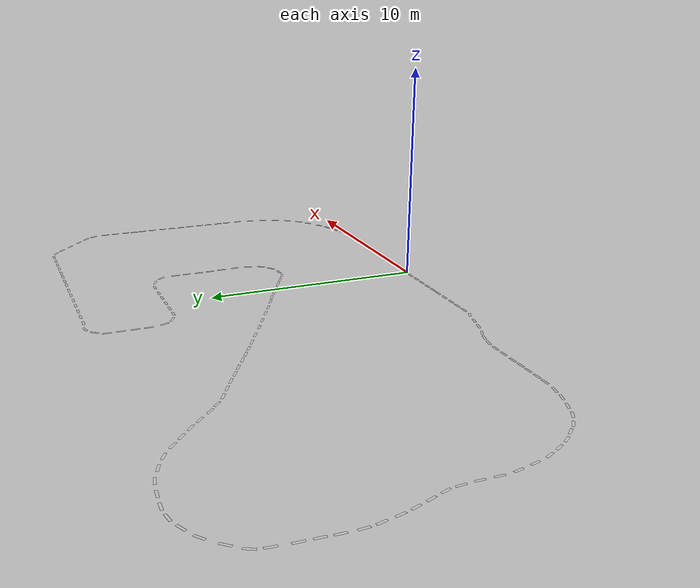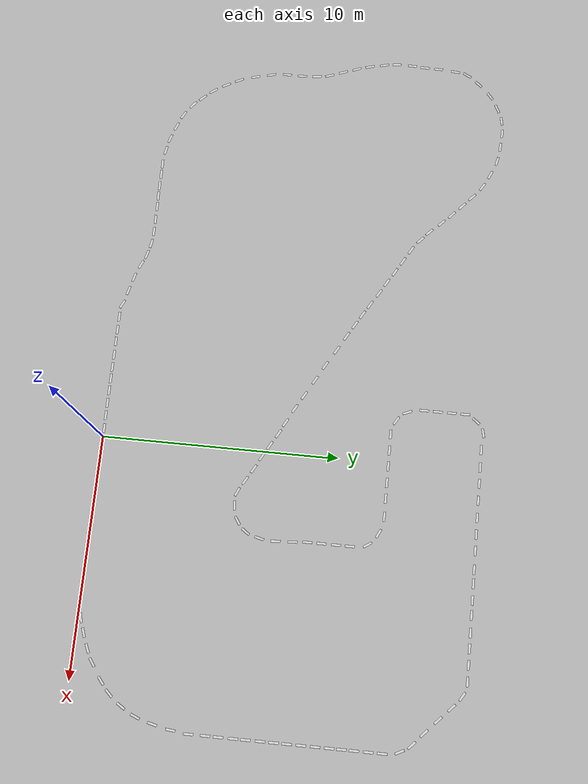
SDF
<?xml version='1.0'?>
<sdf version='1.6'>
  <model name="rine">
    <static>true</static>
    <link name="link">

      <visual name="visual">
        <geometry>
          <mesh>
            <uri>model://turtlebot3_racemap/rine/meshes/rine.dae</uri>
          </mesh>
        </geometry>
      </visual>
    </link>
  </model>
</sdf>
